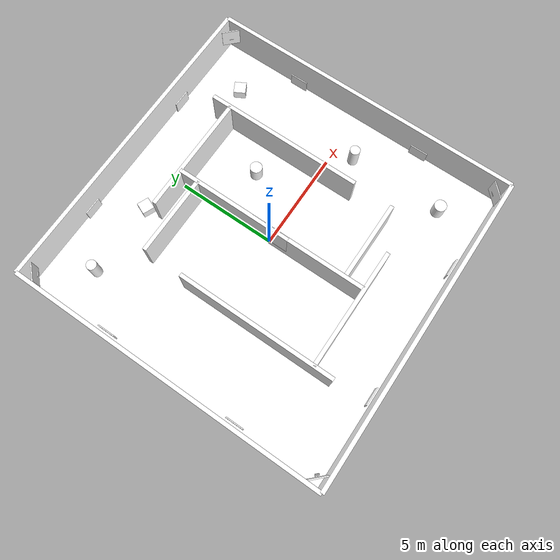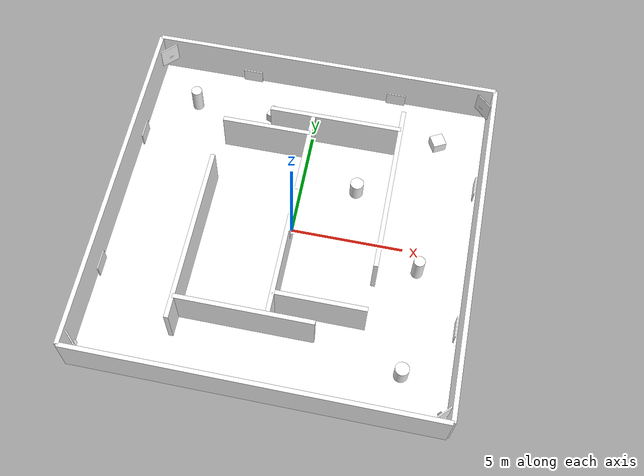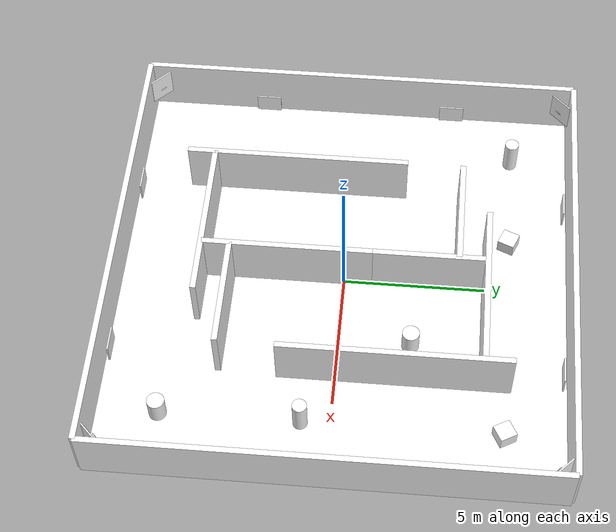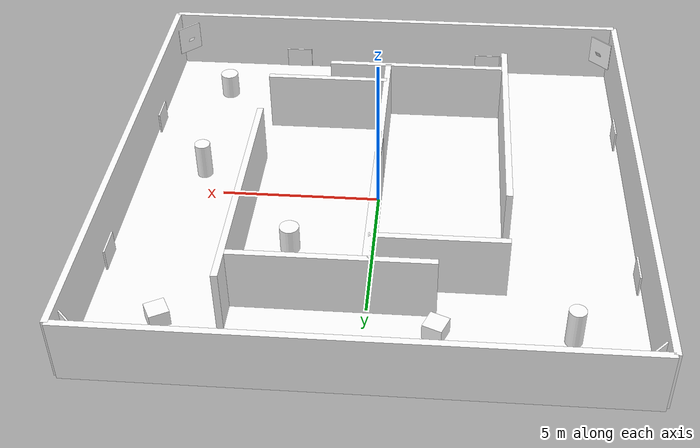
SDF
<?xml version="1.0"?>
<sdf version="1.7">
  <world name="maze_world">

    <!-- Physics settings -->
    <physics name="default_physics" type="ode">
      <max_step_size>0.001</max_step_size>
      <real_time_factor>1.0</real_time_factor>
      <real_time_update_rate>1000</real_time_update_rate>
    </physics>

    <!-- Essential Gazebo Plugins -->
    <plugin filename="gz-sim-physics-system" name="gz::sim::systems::Physics"></plugin>
    <plugin filename="gz-sim-sensors-system" name="gz::sim::systems::Sensors">
      <render_engine>ogre2</render_engine>
    </plugin>
    <plugin filename="gz-sim-scene-broadcaster-system" name="gz::sim::systems::SceneBroadcaster"></plugin>
    <plugin filename="gz-sim-user-commands-system" name="gz::sim::systems::UserCommands"></plugin>

    <!-- Scene settings -->
    <scene>
      <ambient>0.6 0.6 0.6 1.0</ambient>
      <background>0.4 0.4 0.5 1.0</background>
      <shadows>true</shadows>
    </scene>

    <!-- Bright overhead lighting -->
    <light type="directional" name="sun">
      <cast_shadows>true</cast_shadows>
      <pose>0 0 20 0 0 0</pose>
      <diffuse>0.9 0.9 0.9 1</diffuse>
      <specular>0.3 0.3 0.3 1</specular>
      <direction>0 0 -1</direction>
    </light>

    <model name="ground_plane">
      <static>true</static>
      <link name="link">
        <collision name="collision">
          <geometry>
            <plane>
              <normal>0 0 1</normal>
              <size>100 100</size>
            </plane>
          </geometry>
        </collision>
        <visual name="visual">
          <pose>0 0 -0.01 0 0 0</pose>
          <geometry>
            <box>
              <size>16 16 0.02</size>
            </box>
          </geometry>
          <material>
            <ambient>1 1 1 1</ambient>
            <diffuse>1 1 1 1</diffuse>
            <specular>0.2 0.2 0.2 1</specular>
            <pbr>
              <metal>
                <albedo_map>model://vo_textures/materials/textures/floor_tiles.png</albedo_map>
                <roughness>0.7</roughness>
                <metalness>0.1</metalness>
              </metal>
            </pbr>
          </material>
        </visual>
      </link>
    </model>

    <!-- Maze Layout: Complex path with multiple turns and dead ends -->

    <!-- Outer boundary walls (textured for visual odometry) -->
    <model name="boundary_north">
      <static>true</static>
      <pose>0 8 1 0 0 0</pose>
      <link name="link">
        <collision name="collision">
          <geometry>
            <box>
              <size>16 0.2 2</size>
            </box>
          </geometry>
        </collision>
        <visual name="visual">
          <geometry>
            <box>
              <size>16 0.2 2</size>
            </box>
          </geometry>
          <material>
            <ambient>1 1 1 1</ambient>
            <diffuse>1 1 1 1</diffuse>
            <specular>0.1 0.1 0.1 1</specular>
            <pbr>
              <metal>
                <albedo_map>model://vo_textures/materials/textures/wall_brick.png</albedo_map>
                <roughness>0.75</roughness>
                <metalness>0.1</metalness>
              </metal>
            </pbr>
          </material>
        </visual>
      </link>
    </model>

    <model name="boundary_south">
      <static>true</static>
      <pose>0 -8 1 0 0 0</pose>
      <link name="link">
        <collision name="collision">
          <geometry>
            <box>
              <size>16 0.2 2</size>
            </box>
          </geometry>
        </collision>
        <visual name="visual">
          <geometry>
            <box>
              <size>16 0.2 2</size>
            </box>
          </geometry>
          <material>
            <ambient>1 1 1 1</ambient>
            <diffuse>1 1 1 1</diffuse>
            <specular>0.1 0.1 0.1 1</specular>
            <pbr>
              <metal>
                <albedo_map>model://vo_textures/materials/textures/wall_brick.png</albedo_map>
                <roughness>0.75</roughness>
                <metalness>0.1</metalness>
              </metal>
            </pbr>
          </material>
        </visual>
      </link>
    </model>

    <model name="boundary_east">
      <static>true</static>
      <pose>8 0 1 0 0 0</pose>
      <link name="link">
        <collision name="collision">
          <geometry>
            <box>
              <size>0.2 16 2</size>
            </box>
          </geometry>
        </collision>
        <visual name="visual">
          <geometry>
            <box>
              <size>0.2 16 2</size>
            </box>
          </geometry>
          <material>
            <ambient>1 1 1 1</ambient>
            <diffuse>1 1 1 1</diffuse>
            <specular>0.1 0.1 0.1 1</specular>
            <pbr>
              <metal>
                <albedo_map>model://vo_textures/materials/textures/wall_blocks.png</albedo_map>
                <roughness>0.8</roughness>
                <metalness>0.1</metalness>
              </metal>
            </pbr>
          </material>
        </visual>
      </link>
    </model>

    <model name="boundary_west">
      <static>true</static>
      <pose>-8 0 1 0 0 0</pose>
      <link name="link">
        <collision name="collision">
          <geometry>
            <box>
              <size>0.2 16 2</size>
            </box>
          </geometry>
        </collision>
        <visual name="visual">
          <geometry>
            <box>
              <size>0.2 16 2</size>
            </box>
          </geometry>
          <material>
            <ambient>1 1 1 1</ambient>
            <diffuse>1 1 1 1</diffuse>
            <specular>0.1 0.1 0.1 1</specular>
            <pbr>
              <metal>
                <albedo_map>model://vo_textures/materials/textures/wall_blocks.png</albedo_map>
                <roughness>0.8</roughness>
                <metalness>0.1</metalness>
              </metal>
            </pbr>
          </material>
        </visual>
      </link>
    </model>

    <!-- Internal maze walls with varied textures - redesigned for navigable paths -->
    <!-- Vertical walls creating corridors -->
    <model name="maze_wall_1">
      <static>true</static>
      <pose>4 2 1 0 0 0</pose>
      <link name="link">
        <collision name="collision">
          <geometry>
            <box>
              <size>0.2 8 2</size>
            </box>
          </geometry>
        </collision>
        <visual name="visual">
          <geometry>
            <box>
              <size>0.2 8 2</size>
            </box>
          </geometry>
          <material>
            <ambient>1 1 1 1</ambient>
            <diffuse>1 1 1 1</diffuse>
            <specular>0.1 0.1 0.1 1</specular>
            <pbr>
              <metal>
                <albedo_map>model://vo_textures/materials/textures/wall_panels.png</albedo_map>
                <roughness>0.75</roughness>
                <metalness>0.15</metalness>
              </metal>
            </pbr>
          </material>
        </visual>
      </link>
    </model>

    <model name="maze_wall_2">
      <static>true</static>
      <pose>-4 -2 1 0 0 0</pose>
      <link name="link">
        <collision name="collision">
          <geometry>
            <box>
              <size>0.2 8 2</size>
            </box>
          </geometry>
        </collision>
        <visual name="visual">
          <geometry>
            <box>
              <size>0.2 8 2</size>
            </box>
          </geometry>
          <material>
            <ambient>1 1 1 1</ambient>
            <diffuse>1 1 1 1</diffuse>
            <specular>0.1 0.1 0.1 1</specular>
            <pbr>
              <metal>
                <albedo_map>model://vo_textures/materials/textures/wall_brick.png</albedo_map>
                <roughness>0.8</roughness>
                <metalness>0.1</metalness>
              </metal>
            </pbr>
          </material>
        </visual>
      </link>
    </model>

    <!-- Horizontal walls creating maze paths -->
    <model name="maze_wall_3">
      <static>true</static>
      <pose>1 5 1 0 0 1.5708</pose>
      <link name="link">
        <collision name="collision">
          <geometry>
            <box>
              <size>0.2 6 2</size>
            </box>
          </geometry>
        </collision>
        <visual name="visual">
          <geometry>
            <box>
              <size>0.2 6 2</size>
            </box>
          </geometry>
          <material>
            <ambient>1 1 1 1</ambient>
            <diffuse>1 1 1 1</diffuse>
            <specular>0.1 0.1 0.1 1</specular>
            <pbr>
              <metal>
                <albedo_map>model://vo_textures/materials/textures/wall_blocks.png</albedo_map>
                <roughness>0.65</roughness>
                <metalness>0.25</metalness>
              </metal>
            </pbr>
          </material>
        </visual>
      </link>
    </model>

    <model name="maze_wall_4">
      <static>true</static>
      <pose>-1 -5 1 0 0 1.5708</pose>
      <link name="link">
        <collision name="collision">
          <geometry>
            <box>
              <size>0.2 6 2</size>
            </box>
          </geometry>
        </collision>
        <visual name="visual">
          <geometry>
            <box>
              <size>0.2 6 2</size>
            </box>
          </geometry>
          <material>
            <ambient>1 1 1 1</ambient>
            <diffuse>1 1 1 1</diffuse>
            <specular>0.1 0.1 0.1 1</specular>
            <pbr>
              <metal>
                <albedo_map>model://vo_textures/materials/textures/wall_panels.png</albedo_map>
                <roughness>0.85</roughness>
                <metalness>0.08</metalness>
              </metal>
            </pbr>
          </material>
        </visual>
      </link>
    </model>

    <!-- Central dividers for more complex paths -->
    <model name="maze_wall_5">
      <static>true</static>
      <pose>0 2 1 0 0 0</pose>
      <link name="link">
        <collision name="collision">
          <geometry>
            <box>
              <size>0.2 6 2</size>
            </box>
          </geometry>
        </collision>
        <visual name="visual">
          <geometry>
            <box>
              <size>0.2 6 2</size>
            </box>
          </geometry>
          <material>
            <ambient>1 1 1 1</ambient>
            <diffuse>1 1 1 1</diffuse>
            <specular>0.1 0.1 0.1 1</specular>
            <pbr>
              <metal>
                <albedo_map>model://vo_textures/materials/textures/wall_panels.png</albedo_map>
                <roughness>0.72</roughness>
                <metalness>0.18</metalness>
              </metal>
            </pbr>
          </material>
        </visual>
      </link>
    </model>

    <model name="maze_wall_6">
      <static>true</static>
      <pose>0 -2 1 0 0 0</pose>
      <link name="link">
        <collision name="collision">
          <geometry>
            <box>
              <size>0.2 6 2</size>
            </box>
          </geometry>
        </collision>
        <visual name="visual">
          <geometry>
            <box>
              <size>0.2 6 2</size>
            </box>
          </geometry>
          <material>
            <ambient>1 1 1 1</ambient>
            <diffuse>1 1 1 1</diffuse>
            <specular>0.1 0.1 0.1 1</specular>
            <pbr>
              <metal>
                <albedo_map>model://vo_textures/materials/textures/wall_brick.png</albedo_map>
                <roughness>0.7</roughness>
                <metalness>0.2</metalness>
              </metal>
            </pbr>
          </material>
        </visual>
      </link>
    </model>

    <!-- Additional maze complexity walls -->
    <model name="maze_wall_7">
      <static>true</static>
      <pose>-2 4 1 0 0 1.5708</pose>
      <link name="link">
        <collision name="collision">
          <geometry>
            <box>
              <size>0.2 4 2</size>
            </box>
          </geometry>
        </collision>
        <visual name="visual">
          <geometry>
            <box>
              <size>0.2 4 2</size>
            </box>
          </geometry>
          <material>
            <ambient>1 1 1 1</ambient>
            <diffuse>1 1 1 1</diffuse>
            <specular>0.1 0.1 0.1 1</specular>
            <pbr>
              <metal>
                <albedo_map>model://vo_textures/materials/textures/wall_blocks.png</albedo_map>
                <roughness>0.73</roughness>
                <metalness>0.17</metalness>
              </metal>
            </pbr>
          </material>
        </visual>
      </link>
    </model>

    <model name="maze_wall_8">
      <static>true</static>
      <pose>2 -4 1 0 0 1.5708</pose>
      <link name="link">
        <collision name="collision">
          <geometry>
            <box>
              <size>0.2 4 2</size>
            </box>
          </geometry>
        </collision>
        <visual name="visual">
          <geometry>
            <box>
              <size>0.2 4 2</size>
            </box>
          </geometry>
          <material>
            <ambient>1 1 1 1</ambient>
            <diffuse>1 1 1 1</diffuse>
            <specular>0.1 0.1 0.1 1</specular>
            <pbr>
              <metal>
                <albedo_map>model://vo_textures/materials/textures/wall_panels.png</albedo_map>
                <roughness>0.78</roughness>
                <metalness>0.13</metalness>
              </metal>
            </pbr>
          </material>
        </visual>
      </link>
    </model>

    <!-- Wall paintings: high-contrast landmarks mounted low (camera height)
         and slightly proud of the boundary walls, facing the drive ring. -->
    <model name="painting_n1">
      <static>true</static>
      <pose>-3.5 7.75 0.45 0 0 0</pose>
      <link name="link">
        <visual name="visual">
          <geometry><box><size>0.9 0.05 0.7</size></box></geometry>
          <material>
            <ambient>1 1 1 1</ambient><diffuse>1 1 1 1</diffuse><specular>0 0 0 1</specular>
            <pbr><metal>
              <albedo_map>model://vo_textures/materials/textures/painting_1.png</albedo_map>
              <roughness>0.6</roughness><metalness>0.0</metalness>
            </metal></pbr>
          </material>
        </visual>
      </link>
    </model>

    <model name="painting_n2">
      <static>true</static>
      <pose>3.5 7.75 0.45 0 0 0</pose>
      <link name="link">
        <visual name="visual">
          <geometry><box><size>0.9 0.05 0.7</size></box></geometry>
          <material>
            <ambient>1 1 1 1</ambient><diffuse>1 1 1 1</diffuse><specular>0 0 0 1</specular>
            <pbr><metal>
              <albedo_map>model://vo_textures/materials/textures/painting_2.png</albedo_map>
              <roughness>0.6</roughness><metalness>0.0</metalness>
            </metal></pbr>
          </material>
        </visual>
      </link>
    </model>

    <model name="painting_s1">
      <static>true</static>
      <pose>-3.5 -7.75 0.45 0 0 0</pose>
      <link name="link">
        <visual name="visual">
          <geometry><box><size>0.9 0.05 0.7</size></box></geometry>
          <material>
            <ambient>1 1 1 1</ambient><diffuse>1 1 1 1</diffuse><specular>0 0 0 1</specular>
            <pbr><metal>
              <albedo_map>model://vo_textures/materials/textures/painting_3.png</albedo_map>
              <roughness>0.6</roughness><metalness>0.0</metalness>
            </metal></pbr>
          </material>
        </visual>
      </link>
    </model>

    <model name="painting_s2">
      <static>true</static>
      <pose>3.5 -7.75 0.45 0 0 0</pose>
      <link name="link">
        <visual name="visual">
          <geometry><box><size>0.9 0.05 0.7</size></box></geometry>
          <material>
            <ambient>1 1 1 1</ambient><diffuse>1 1 1 1</diffuse><specular>0 0 0 1</specular>
            <pbr><metal>
              <albedo_map>model://vo_textures/materials/textures/painting_4.png</albedo_map>
              <roughness>0.6</roughness><metalness>0.0</metalness>
            </metal></pbr>
          </material>
        </visual>
      </link>
    </model>

    <model name="painting_e1">
      <static>true</static>
      <pose>7.75 -3.5 0.45 0 0 0</pose>
      <link name="link">
        <visual name="visual">
          <geometry><box><size>0.05 0.9 0.7</size></box></geometry>
          <material>
            <ambient>1 1 1 1</ambient><diffuse>1 1 1 1</diffuse><specular>0 0 0 1</specular>
            <pbr><metal>
              <albedo_map>model://vo_textures/materials/textures/painting_5.png</albedo_map>
              <roughness>0.6</roughness><metalness>0.0</metalness>
            </metal></pbr>
          </material>
        </visual>
      </link>
    </model>

    <model name="painting_e2">
      <static>true</static>
      <pose>7.75 3.5 0.45 0 0 0</pose>
      <link name="link">
        <visual name="visual">
          <geometry><box><size>0.05 0.9 0.7</size></box></geometry>
          <material>
            <ambient>1 1 1 1</ambient><diffuse>1 1 1 1</diffuse><specular>0 0 0 1</specular>
            <pbr><metal>
              <albedo_map>model://vo_textures/materials/textures/painting_6.png</albedo_map>
              <roughness>0.6</roughness><metalness>0.0</metalness>
            </metal></pbr>
          </material>
        </visual>
      </link>
    </model>

    <model name="painting_w1">
      <static>true</static>
      <pose>-7.75 -3.5 0.45 0 0 0</pose>
      <link name="link">
        <visual name="visual">
          <geometry><box><size>0.05 0.9 0.7</size></box></geometry>
          <material>
            <ambient>1 1 1 1</ambient><diffuse>1 1 1 1</diffuse><specular>0 0 0 1</specular>
            <pbr><metal>
              <albedo_map>model://vo_textures/materials/textures/painting_1.png</albedo_map>
              <roughness>0.6</roughness><metalness>0.0</metalness>
            </metal></pbr>
          </material>
        </visual>
      </link>
    </model>

    <model name="painting_w2">
      <static>true</static>
      <pose>-7.75 3.5 0.45 0 0 0</pose>
      <link name="link">
        <visual name="visual">
          <geometry><box><size>0.05 0.9 0.7</size></box></geometry>
          <material>
            <ambient>1 1 1 1</ambient><diffuse>1 1 1 1</diffuse><specular>0 0 0 1</specular>
            <pbr><metal>
              <albedo_map>model://vo_textures/materials/textures/painting_3.png</albedo_map>
              <roughness>0.6</roughness><metalness>0.0</metalness>
            </metal></pbr>
          </material>
        </visual>
      </link>
    </model>

    <include>
      <uri>model://crate</uri>
      <name>prop_crate_ne</name>
      <pose>5.8 5.8 0.25 0 0 0.5</pose>
    </include>

    <include>
      <uri>model://pillar</uri>
      <name>prop_pillar_nw</name>
      <pose>-5.8 5.8 0.6 0 0 0</pose>
    </include>

    <include>
      <uri>model://barrel</uri>
      <name>prop_barrel_se</name>
      <pose>5.8 -5.8 0.425 0 0 0</pose>
    </include>

    <include>
      <uri>model://pillar</uri>
      <name>prop_pillar_e</name>
      <pose>5.8 -1.0 0.6 0 0 0</pose>
    </include>

    <include>
      <uri>model://crate</uri>
      <name>prop_crate_n</name>
      <pose>-2.0 5.8 0.25 0 0 -0.4</pose>
    </include>

    <include>
      <uri>model://barrel</uri>
      <name>prop_barrel_mid</name>
      <pose>2.5 2.5 0.425 0 0 0</pose>
    </include>

    <model name="marker_backing_0">
      <static>true</static>
      <pose>7.585 7.585 1.2 0 0 -2.356</pose>
      <link name="link">
        <visual name="visual">
          <geometry><box><size>0.05 0.9 1.0</size></box></geometry>
          <material>
            <ambient>0.9 0.9 0.9 1</ambient><diffuse>1 1 1 1</diffuse><specular>0.02 0.02 0.02 1</specular>
          </material>
        </visual>
      </link>
    </model>
    <model name="marker_backing_1">
      <static>true</static>
      <pose>-7.585 7.585 1.2 0 0 2.356</pose>
      <link name="link">
        <visual name="visual">
          <geometry><box><size>0.05 0.9 1.0</size></box></geometry>
          <material>
            <ambient>0.9 0.9 0.9 1</ambient><diffuse>1 1 1 1</diffuse><specular>0.02 0.02 0.02 1</specular>
          </material>
        </visual>
      </link>
    </model>
    <model name="marker_backing_2">
      <static>true</static>
      <pose>-7.585 -7.585 1.2 0 0 0.785</pose>
      <link name="link">
        <visual name="visual">
          <geometry><box><size>0.05 0.9 1.0</size></box></geometry>
          <material>
            <ambient>0.9 0.9 0.9 1</ambient><diffuse>1 1 1 1</diffuse><specular>0.02 0.02 0.02 1</specular>
          </material>
        </visual>
      </link>
    </model>
    <model name="marker_backing_3">
      <static>true</static>
      <pose>7.585 -7.585 1.2 0 0 -0.785</pose>
      <link name="link">
        <visual name="visual">
          <geometry><box><size>0.05 0.9 1.0</size></box></geometry>
          <material>
            <ambient>0.9 0.9 0.9 1</ambient><diffuse>1 1 1 1</diffuse><specular>0.02 0.02 0.02 1</specular>
          </material>
        </visual>
      </link>
    </model>

    <!-- WhyCode Markers -->
    <include>
      <uri>model://whycode_0</uri>
      <name>marker_0</name>
      <pose>7.5 7.5 1.2 0 0 -2.356</pose>
    </include>

    <include>
      <uri>model://whycode_1</uri>
      <name>marker_1</name>
      <pose>-7.5 7.5 1.2 0 0 2.356</pose>
    </include>

    <include>
      <uri>model://whycode_2</uri>
      <name>marker_2</name>
      <pose>-7.5 -7.5 1.2 0 0 0.785</pose>
    </include>

    <include>
      <uri>model://whycode_3</uri>
      <name>marker_3</name>
      <pose>7.5 -7.5 1.2 0 0 -0.785</pose>
    </include>

  </world>
</sdf>

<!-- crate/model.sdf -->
<!-- Textured wooden crate (0.6 x 0.6 x 0.5). Geometry centred on the link
     origin; include with z = 0.25 so it rests on the floor. -->
<sdf version="1.7">
  <model name="crate">
    <static>true</static>
    <link name="link">
      <collision name="collision">
        <geometry>
          <box><size>0.6 0.6 0.5</size></box>
        </geometry>
      </collision>
      <visual name="visual">
        <geometry>
          <box><size>0.6 0.6 0.5</size></box>
        </geometry>
        <material>
          <ambient>1 1 1 1</ambient>
          <diffuse>1 1 1 1</diffuse>
          <specular>0.1 0.1 0.1 1</specular>
          <pbr>
            <metal>
              <albedo_map>model://crate/materials/textures/crate.png</albedo_map>
              <roughness>0.8</roughness>
              <metalness>0.0</metalness>
            </metal>
          </pbr>
        </material>
      </visual>
    </link>
  </model>
</sdf>

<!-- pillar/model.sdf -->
<!-- Textured stone pillar (radius 0.25, height 1.2). Geometry centred on the
     link origin; include with z = 0.6 so it rests on the floor. -->
<sdf version="1.7">
  <model name="pillar">
    <static>true</static>
    <link name="link">
      <collision name="collision">
        <geometry>
          <cylinder><radius>0.25</radius><length>1.2</length></cylinder>
        </geometry>
      </collision>
      <visual name="visual">
        <geometry>
          <cylinder><radius>0.25</radius><length>1.2</length></cylinder>
        </geometry>
        <material>
          <ambient>1 1 1 1</ambient>
          <diffuse>1 1 1 1</diffuse>
          <specular>0.15 0.15 0.15 1</specular>
          <pbr>
            <metal>
              <albedo_map>model://pillar/materials/textures/pillar.png</albedo_map>
              <roughness>0.7</roughness>
              <metalness>0.05</metalness>
            </metal>
          </pbr>
        </material>
      </visual>
    </link>
  </model>
</sdf>

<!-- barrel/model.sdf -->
<!-- Textured metal barrel (radius 0.3, height 0.85). Geometry centred on the
     link origin; include with z = 0.425 so it rests on the floor. -->
<sdf version="1.7">
  <model name="barrel">
    <static>true</static>
    <link name="link">
      <collision name="collision">
        <geometry>
          <cylinder><radius>0.3</radius><length>0.85</length></cylinder>
        </geometry>
      </collision>
      <visual name="visual">
        <geometry>
          <cylinder><radius>0.3</radius><length>0.85</length></cylinder>
        </geometry>
        <material>
          <ambient>1 1 1 1</ambient>
          <diffuse>1 1 1 1</diffuse>
          <specular>0.3 0.3 0.3 1</specular>
          <pbr>
            <metal>
              <albedo_map>model://barrel/materials/textures/barrel.png</albedo_map>
              <roughness>0.4</roughness>
              <metalness>0.6</metalness>
            </metal>
          </pbr>
        </material>
      </visual>
    </link>
  </model>
</sdf>

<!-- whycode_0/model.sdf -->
<sdf version="1.7">
  <model name="WhyCode_0">
    <static>true</static>
    <link name="link">
      <pose>0 0 0 0 2.0944 0</pose>
      <collision name="collision">
        <geometry>
          <box>
            <size>0.2 0.2 0.01</size>
          </box>
        </geometry>
      </collision>
      <visual name="visual">
        <geometry>
          <box>
            <size>0.2 0.2 0.01</size>
          </box>
        </geometry>
        <material>
          <ambient>1 1 1 1</ambient>
          <diffuse>1 1 1 1</diffuse>
          <specular>0 0 0 1</specular>
          <pbr>
            <metal>
              <albedo_map>model://whycode_0/materials/textures/whycode_1.png</albedo_map>
              <roughness>0.5</roughness>
              <metalness>0.0</metalness>
            </metal>
          </pbr>
          <!-- Fallback for Ogre 1.x -->
          <script>
            <uri>model://whycode_0/materials/scripts</uri>
            <uri>model://whycode_0/materials/textures</uri>
            <name>WhyCode_0/Marker</name>
          </script>
        </material>
      </visual>
    </link>
  </model>
</sdf>

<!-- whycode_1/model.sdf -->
<sdf version="1.7">
  <model name="WhyCode_1">
    <static>true</static>
    <link name="link">
      <pose>0 0 0 0 -2.0944 0</pose>
      <collision name="collision">
        <geometry>
          <box>
            <size>0.2 0.2 0.01</size>
          </box>
        </geometry>
      </collision>
      <visual name="visual">
        <geometry>
          <box>
            <size>0.2 0.2 0.01</size>
          </box>
        </geometry>
        <material>
          <ambient>1 1 1 1</ambient>
          <diffuse>1 1 1 1</diffuse>
          <specular>0 0 0 1</specular>
          <pbr>
            <metal>
              <albedo_map>model://whycode_1/materials/textures/whycode_2.png</albedo_map>
              <roughness>0.5</roughness>
              <metalness>0.0</metalness>
            </metal>
          </pbr>
          <!-- Fallback for Ogre 1.x -->
          <script>
            <uri>model://whycode_1/materials/scripts</uri>
            <uri>model://whycode_1/materials/textures</uri>
            <name>WhyCode_1/Marker</name>
          </script>
        </material>
      </visual>
    </link>
  </model>
</sdf>

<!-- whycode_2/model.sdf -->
<sdf version="1.7">
  <model name="WhyCode_2">
    <static>true</static>
    <link name="link">
      <pose>0 0 0 0 2.0944 0</pose>
      <collision name="collision">
        <geometry>
          <box>
            <size>0.2 0.2 0.01</size>
          </box>
        </geometry>
      </collision>
      <visual name="visual">
        <geometry>
          <box>
            <size>0.2 0.2 0.01</size>
          </box>
        </geometry>
        <material>
          <ambient>1 1 1 1</ambient>
          <diffuse>1 1 1 1</diffuse>
          <specular>0 0 0 1</specular>
          <pbr>
            <metal>
              <albedo_map>model://whycode_2/materials/textures/whycode_3.png</albedo_map>
              <roughness>0.5</roughness>
              <metalness>0.0</metalness>
            </metal>
          </pbr>
          <!-- Fallback for Ogre 1.x -->
          <script>
            <uri>model://whycode_2/materials/scripts</uri>
            <uri>model://whycode_2/materials/textures</uri>
            <name>WhyCode_2/Marker</name>
          </script>
        </material>
      </visual>
    </link>
  </model>
</sdf>

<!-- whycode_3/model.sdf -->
<sdf version="1.7">
  <model name="WhyCode_3">
    <static>true</static>
    <link name="link">
      <pose>0 0 0 0 -2.0944 0</pose>
      <collision name="collision">
        <geometry>
          <box>
            <size>0.2 0.2 0.01</size>
          </box>
        </geometry>
      </collision>
      <visual name="visual">
        <geometry>
          <box>
            <size>0.2 0.2 0.01</size>
          </box>
        </geometry>
        <material>
          <ambient>1 1 1 1</ambient>
          <diffuse>1 1 1 1</diffuse>
          <specular>0 0 0 1</specular>
          <pbr>
            <metal>
              <albedo_map>model://whycode_3/materials/textures/whycode_4.png</albedo_map>
              <roughness>0.5</roughness>
              <metalness>0.0</metalness>
            </metal>
          </pbr>
          <!-- Fallback for Ogre 1.x -->
          <script>
            <uri>model://whycode_3/materials/scripts</uri>
            <uri>model://whycode_3/materials/textures</uri>
            <name>WhyCode_3/Marker</name>
          </script>
        </material>
      </visual>
    </link>
  </model>
</sdf>
